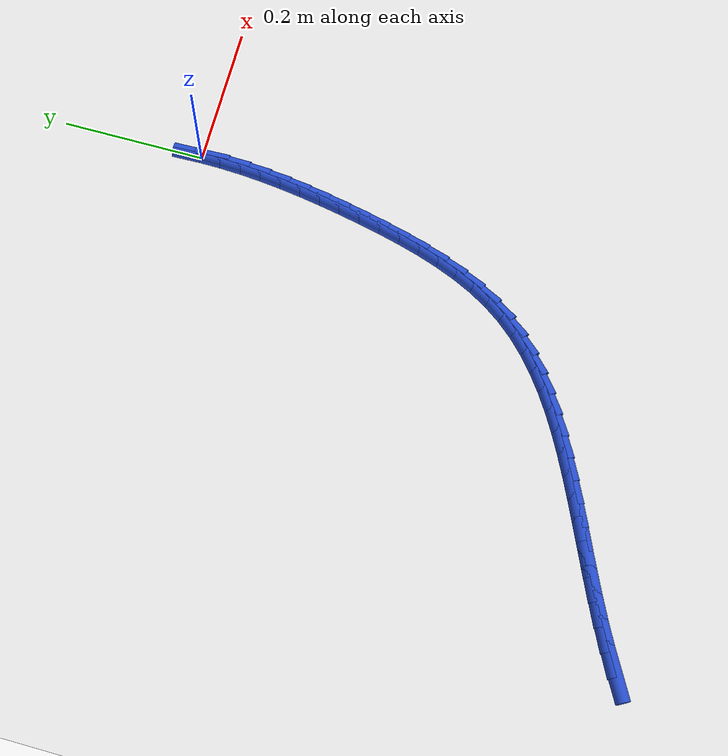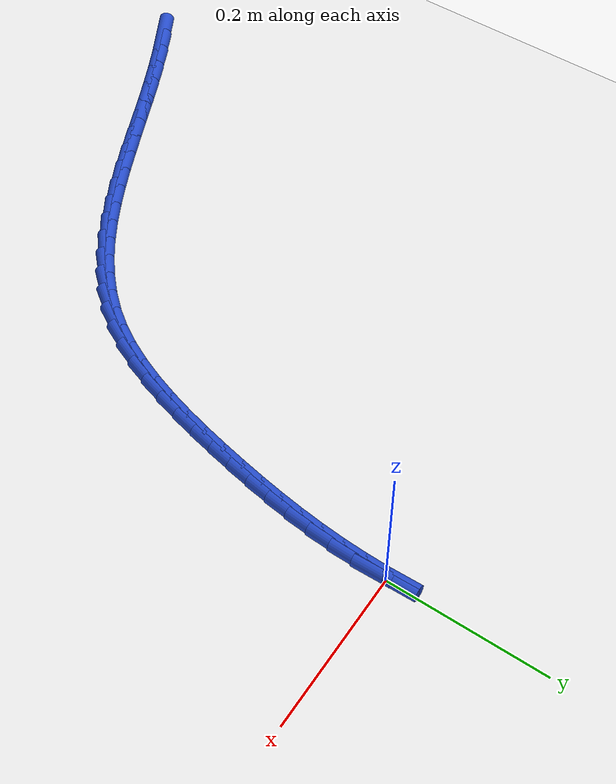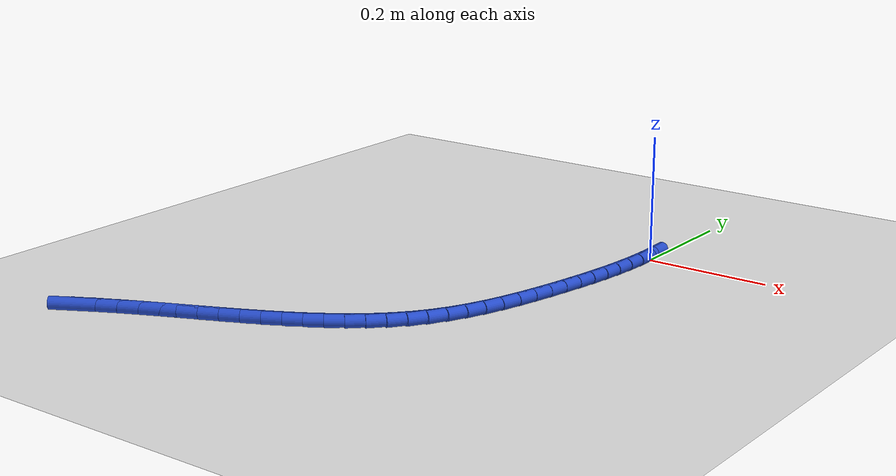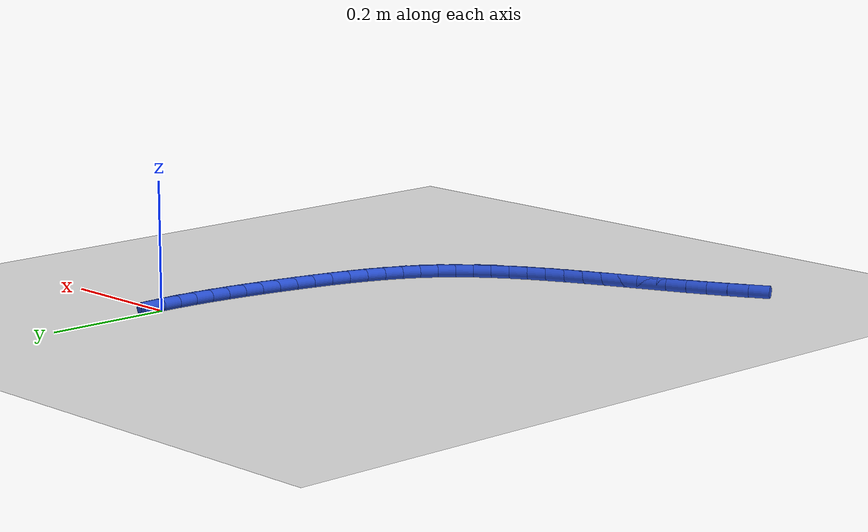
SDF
<sdf version="1.6">
 <world name="default">
  <model name="ground_plane">
   <static>1</static>
   <link name="link">
    <collision name="collision">
     <geometry><plane><normal>0 0 1</normal><size>100 100</size></plane></geometry>
     <surface><friction><ode><mu>100</mu><mu2>50</mu2></ode></friction></surface>
    </collision>
    <visual name="visual">
     <cast_shadows>0</cast_shadows>
     <geometry><plane><normal>0 0 1</normal><size>100 100</size></plane></geometry>
     <material>
      <script><uri>file://media/materials/scripts/gazebo.material</uri><name>Gazebo/WhiteGlow</name></script>
     </material>
    </visual>
   </link>
  </model>
  <model name="line">
   <link name="link_0">
    <pose>8.673617379884035e-19 -9.71445146547012e-17 0.01 0 1.57 -1.5445140956670516</pose>
    <collision name="collision">
     <geometry><cylinder><radius>0.01</radius><length>0.08</length></cylinder></geometry>
    </collision>
    <visual name="visual">
     <material>
      <script><name>Gazebo/Blue</name><uri>file://media/materials/scripts/gazebo.material</uri></script>
     </material>
     <geometry><cylinder><radius>0.01</radius><length>0.08</length></cylinder></geometry>
    </visual>
   </link>
   <link name="link_238">
    <pose>-0.5440819165499652 -0.7136613642261669 0.01 0 1.57 0.5042394348218728</pose>
    <collision name="collision">
     <geometry><cylinder><radius>0.01</radius><length>0.08</length></cylinder></geometry>
    </collision>
    <visual name="visual">
     <material>
      <script><name>Gazebo/Blue</name><uri>file://media/materials/scripts/gazebo.material</uri></script>
     </material>
     <geometry><cylinder><radius>0.01</radius><length>0.08</length></cylinder></geometry>
    </visual>
   </link>
   <link name="link_239">
    <pose>-0.5155455012771029 -0.6979144001093337 0.01 0 1.57 0.4742836826554056</pose>
    <collision name="collision">
     <geometry><cylinder><radius>0.01</radius><length>0.08</length></cylinder></geometry>
    </collision>
    <visual name="visual">
     <material>
      <script><name>Gazebo/Blue</name><uri>file://media/materials/scripts/gazebo.material</uri></script>
     </material>
     <geometry><cylinder><radius>0.01</radius><length>0.08</length></cylinder></geometry>
    </visual>
   </link>
   <link name="link_240">
    <pose>-0.486374075766426 -0.6829387622262035 0.01 0 1.57 0.4506564254894736</pose>
    <collision name="collision">
     <geometry><cylinder><radius>0.01</radius><length>0.08</length></cylinder></geometry>
    </collision>
    <visual name="visual">
     <material>
      <script><name>Gazebo/Blue</name><uri>file://media/materials/scripts/gazebo.material</uri></script>
     </material>
     <geometry><cylinder><radius>0.01</radius><length>0.08</length></cylinder></geometry>
    </visual>
   </link>
   <link name="link_241">
    <pose>-0.4568443580804427 -0.6686503677468236 0.01 0 1.57 0.4338480585856477</pose>
    <collision name="collision">
     <geometry><cylinder><radius>0.01</radius><length>0.08</length></cylinder></geometry>
    </collision>
    <visual name="visual">
     <material>
      <script><name>Gazebo/Blue</name><uri>file://media/materials/scripts/gazebo.material</uri></script>
     </material>
     <geometry><cylinder><radius>0.01</radius><length>0.08</length></cylinder></geometry>
    </visual>
   </link>
   <link name="link_242">
    <pose>-0.4271533268929415 -0.6548949074799544 0.01 0 1.57 0.42413413865004823</pose>
    <collision name="collision">
     <geometry><cylinder><radius>0.01</radius><length>0.08</length></cylinder></geometry>
    </collision>
    <visual name="visual">
     <material>
      <script><name>Gazebo/Blue</name><uri>file://media/materials/scripts/gazebo.material</uri></script>
     </material>
     <geometry><cylinder><radius>0.01</radius><length>0.08</length></cylinder></geometry>
    </visual>
   </link>
   <link name="link_243">
    <pose>-0.39746590062417736 -0.6414898368166531 0.01 0 1.57 0.42155041528539183</pose>
    <collision name="collision">
     <geometry><cylinder><radius>0.01</radius><length>0.08</length></cylinder></geometry>
    </collision>
    <visual name="visual">
     <material>
      <script><name>Gazebo/Blue</name><uri>file://media/materials/scripts/gazebo.material</uri></script>
     </material>
     <geometry><cylinder><radius>0.01</radius><length>0.08</length></cylinder></geometry>
    </visual>
   </link>
   <link name="link_244">
    <pose>-0.3679469104771372 -0.6282525343358607 0.01 0 1.57 0.42622754554371167</pose>
    <collision name="collision">
     <geometry><cylinder><radius>0.01</radius><length>0.08</length></cylinder></geometry>
    </collision>
    <visual name="visual">
     <material>
      <script><name>Gazebo/Blue</name><uri>file://media/materials/scripts/gazebo.material</uri></script>
     </material>
     <geometry><cylinder><radius>0.01</radius><length>0.08</length></cylinder></geometry>
    </visual>
   </link>
   <link name="link_245">
    <pose>-0.3387611876548121 -0.6150003786165202 0.01 0 1.57 0.43840247440151575</pose>
    <collision name="collision">
     <geometry><cylinder><radius>0.01</radius><length>0.08</length></cylinder></geometry>
    </collision>
    <visual name="visual">
     <material>
      <script><name>Gazebo/Blue</name><uri>file://media/materials/scripts/gazebo.material</uri></script>
     </material>
     <geometry><cylinder><radius>0.01</radius><length>0.08</length></cylinder></geometry>
    </visual>
   </link>
   <link name="link_246">
    <pose>-0.3100735633601905 -0.6015507482375734 0.01 0 1.57 0.4584208926110611</pose>
    <collision name="collision">
     <geometry><cylinder><radius>0.01</radius><length>0.08</length></cylinder></geometry>
    </collision>
    <visual name="visual">
     <material>
      <script><name>Gazebo/Blue</name><uri>file://media/materials/scripts/gazebo.material</uri></script>
     </material>
     <geometry><cylinder><radius>0.01</radius><length>0.08</length></cylinder></geometry>
    </visual>
   </link>
   <link name="link_247">
    <pose>-0.28204886879626095 -0.5877210217779621 0.01 0 1.57 0.48672883350217594</pose>
    <collision name="collision">
     <geometry><cylinder><radius>0.01</radius><length>0.08</length></cylinder></geometry>
    </collision>
    <visual name="visual">
     <material>
      <script><name>Gazebo/Blue</name><uri>file://media/materials/scripts/gazebo.material</uri></script>
     </material>
     <geometry><cylinder><radius>0.01</radius><length>0.08</length></cylinder></geometry>
    </visual>
   </link>
   <link name="link_248">
    <pose>-0.25485193516601423 -0.5733285778166293 0.01 0 1.57 0.5238477234206257</pose>
    <collision name="collision">
     <geometry><cylinder><radius>0.01</radius><length>0.08</length></cylinder></geometry>
    </collision>
    <visual name="visual">
     <material>
      <script><name>Gazebo/Blue</name><uri>file://media/materials/scripts/gazebo.material</uri></script>
     </material>
     <geometry><cylinder><radius>0.01</radius><length>0.08</length></cylinder></geometry>
    </visual>
   </link>
   <link name="link_249">
    <pose>-0.2286475936724381 -0.558190794932516 0.01 0 1.57 0.570324134051942</pose>
    <collision name="collision">
     <geometry><cylinder><radius>0.01</radius><length>0.08</length></cylinder></geometry>
    </collision>
    <visual name="visual">
     <material>
      <script><name>Gazebo/Blue</name><uri>file://media/materials/scripts/gazebo.material</uri></script>
     </material>
     <geometry><cylinder><radius>0.01</radius><length>0.08</length></cylinder></geometry>
    </visual>
   </link>
   <link name="link_250">
    <pose>-0.20360067551852326 -0.5421250517045654 0.01 0 1.57 0.626643245215111</pose>
    <collision name="collision">
     <geometry><cylinder><radius>0.01</radius><length>0.08</length></cylinder></geometry>
    </collision>
    <visual name="visual">
     <material>
      <script><name>Gazebo/Blue</name><uri>file://media/materials/scripts/gazebo.material</uri></script>
     </material>
     <geometry><cylinder><radius>0.01</radius><length>0.08</length></cylinder></geometry>
    </visual>
   </link>
   <link name="link_251">
    <pose>-0.1798760119072577 -0.5249487267117188 0.01 0 1.57 0.6930962740765452</pose>
    <collision name="collision">
     <geometry><cylinder><radius>0.01</radius><length>0.08</length></cylinder></geometry>
    </collision>
    <visual name="visual">
     <material>
      <script><name>Gazebo/Blue</name><uri>file://media/materials/scripts/gazebo.material</uri></script>
     </material>
     <geometry><cylinder><radius>0.01</radius><length>0.08</length></cylinder></geometry>
    </visual>
   </link>
   <link name="link_252">
    <pose>-0.15763843404163186 -0.5064791985329189 0.01 0 1.57 0.7696014977796686</pose>
    <collision name="collision">
     <geometry><cylinder><radius>0.01</radius><length>0.08</length></cylinder></geometry>
    </collision>
    <visual name="visual">
     <material>
      <script><name>Gazebo/Blue</name><uri>file://media/materials/scripts/gazebo.material</uri></script>
     </material>
     <geometry><cylinder><radius>0.01</radius><length>0.08</length></cylinder></geometry>
    </visual>
   </link>
   <link name="link_253">
    <pose>-0.1370527731246338 -0.4865338457471071 0.01 0 1.57 0.855500975180025</pose>
    <collision name="collision">
     <geometry><cylinder><radius>0.01</radius><length>0.08</length></cylinder></geometry>
    </collision>
    <visual name="visual">
     <material>
      <script><name>Gazebo/Blue</name><uri>file://media/materials/scripts/gazebo.material</uri></script>
     </material>
     <geometry><cylinder><radius>0.01</radius><length>0.08</length></cylinder></geometry>
    </visual>
   </link>
   <link name="link_254">
    <pose>-0.11828386035925398 -0.4649300469332268 0.01 0 1.57 0.949296777092911</pose>
    <collision name="collision">
     <geometry><cylinder><radius>0.01</radius><length>0.08</length></cylinder></geometry>
    </collision>
    <visual name="visual">
     <material>
      <script><name>Gazebo/Blue</name><uri>file://media/materials/scripts/gazebo.material</uri></script>
     </material>
     <geometry><cylinder><radius>0.01</radius><length>0.08</length></cylinder></geometry>
    </visual>
   </link>
   <link name="link_255">
    <pose>-0.1014948021937686 -0.4414873796852712 0.01 0 1.57 1.0421304355389036</pose>
    <collision name="collision">
     <geometry><cylinder><radius>0.01</radius><length>0.08</length></cylinder></geometry>
    </collision>
    <visual name="visual">
     <material>
      <script><name>Gazebo/Blue</name><uri>file://media/materials/scripts/gazebo.material</uri></script>
     </material>
     <geometry><cylinder><radius>0.01</radius><length>0.08</length></cylinder></geometry>
    </visual>
   </link>
   <link name="link_256">
    <pose>-0.08671865606407447 -0.41619123052868773 0.01 0 1.57 1.1219582338415532</pose>
    <collision name="collision">
     <geometry><cylinder><radius>0.01</radius><length>0.08</length></cylinder></geometry>
    </collision>
    <visual name="visual">
     <material>
      <script><name>Gazebo/Blue</name><uri>file://media/materials/scripts/gazebo.material</uri></script>
     </material>
     <geometry><cylinder><radius>0.01</radius><length>0.08</length></cylinder></geometry>
    </visual>
   </link>
   <link name="link_257">
    <pose>-0.07376993435392837 -0.38930562494899923 0.01 0 1.57 1.188639997748692</pose>
    <collision name="collision">
     <geometry><cylinder><radius>0.01</radius><length>0.08</length></cylinder></geometry>
    </collision>
    <visual name="visual">
     <material>
      <script><name>Gazebo/Blue</name><uri>file://media/materials/scripts/gazebo.material</uri></script>
     </material>
     <geometry><cylinder><radius>0.01</radius><length>0.08</length></cylinder></geometry>
    </visual>
   </link>
   <link name="link_258">
    <pose>-0.06244221641868284 -0.36112127747002365 0.01 0 1.57 1.2434347111171584</pose>
    <collision name="collision">
     <geometry><cylinder><radius>0.01</radius><length>0.08</length></cylinder></geometry>
    </collision>
    <visual name="visual">
     <material>
      <script><name>Gazebo/Blue</name><uri>file://media/materials/scripts/gazebo.material</uri></script>
     </material>
     <geometry><cylinder><radius>0.01</radius><length>0.08</length></cylinder></geometry>
    </visual>
   </link>
   <link name="link_259">
    <pose>-0.05252908161369152 -0.3319289026155818 0.01 0 1.57 1.2875780997806263</pose>
    <collision name="collision">
     <geometry><cylinder><radius>0.01</radius><length>0.08</length></cylinder></geometry>
    </collision>
    <visual name="visual">
     <material>
      <script><name>Gazebo/Blue</name><uri>file://media/materials/scripts/gazebo.material</uri></script>
     </material>
     <geometry><cylinder><radius>0.01</radius><length>0.08</length></cylinder></geometry>
    </visual>
   </link>
   <link name="link_260">
    <pose>-0.04382410929430676 -0.30201921490949096 0.01 0 1.57 1.322124213720686</pose>
    <collision name="collision">
     <geometry><cylinder><radius>0.01</radius><length>0.08</length></cylinder></geometry>
    </collision>
    <visual name="visual">
     <material>
      <script><name>Gazebo/Blue</name><uri>file://media/materials/scripts/gazebo.material</uri></script>
     </material>
     <geometry><cylinder><radius>0.01</radius><length>0.08</length></cylinder></geometry>
    </visual>
   </link>
   <link name="link_261">
    <pose>-0.03612087881588202 -0.2716829288755719 0.01 0 1.57 1.3478684984905005</pose>
    <collision name="collision">
     <geometry><cylinder><radius>0.01</radius><length>0.08</length></cylinder></geometry>
    </collision>
    <visual name="visual">
     <material>
      <script><name>Gazebo/Blue</name><uri>file://media/materials/scripts/gazebo.material</uri></script>
     </material>
     <geometry><cylinder><radius>0.01</radius><length>0.08</length></cylinder></geometry>
    </visual>
   </link>
   <link name="link_262">
    <pose>-0.02921296953376975 -0.24121075903764178 0.01 0 1.57 1.365853921820145</pose>
    <collision name="collision">
     <geometry><cylinder><radius>0.01</radius><length>0.08</length></cylinder></geometry>
    </collision>
    <visual name="visual">
     <material>
      <script><name>Gazebo/Blue</name><uri>file://media/materials/scripts/gazebo.material</uri></script>
     </material>
     <geometry><cylinder><radius>0.01</radius><length>0.08</length></cylinder></geometry>
    </visual>
   </link>
   <link name="link_263">
    <pose>-0.022907664357807674 -0.21087648142973617 0.01 0 1.57 1.3829623203407435</pose>
    <collision name="collision">
     <geometry><cylinder><radius>0.01</radius><length>0.08</length></cylinder></geometry>
    </collision>
    <visual name="visual">
     <material>
      <script><name>Gazebo/Blue</name><uri>file://media/materials/scripts/gazebo.material</uri></script>
     </material>
     <geometry><cylinder><radius>0.01</radius><length>0.08</length></cylinder></geometry>
    </visual>
   </link>
   <link name="link_264">
    <pose>-0.01718058433491205 -0.18074579513631694 0.01 0 1.57 1.4037027665382704</pose>
    <collision name="collision">
     <geometry><cylinder><radius>0.01</radius><length>0.08</length></cylinder></geometry>
    </collision>
    <visual name="visual">
     <material>
      <script><name>Gazebo/Blue</name><uri>file://media/materials/scripts/gazebo.material</uri></script>
     </material>
     <geometry><cylinder><radius>0.01</radius><length>0.08</length></cylinder></geometry>
    </visual>
   </link>
   <link name="link_265">
    <pose>-0.012120405450259735 -0.15074465594246989 0.01 0 1.57 1.4281078151448001</pose>
    <collision name="collision">
     <geometry><cylinder><radius>0.01</radius><length>0.08</length></cylinder></geometry>
    </collision>
    <visual name="visual">
     <material>
      <script><name>Gazebo/Blue</name><uri>file://media/materials/scripts/gazebo.material</uri></script>
     </material>
     <geometry><cylinder><radius>0.01</radius><length>0.08</length></cylinder></geometry>
    </visual>
   </link>
   <link name="link_266">
    <pose>-0.007817898329546281 -0.12079643052057014 0.01 0 1.57 1.4560592190394948</pose>
    <collision name="collision">
     <geometry><cylinder><radius>0.01</radius><length>0.08</length></cylinder></geometry>
    </collision>
    <visual name="visual">
     <material>
      <script><name>Gazebo/Blue</name><uri>file://media/materials/scripts/gazebo.material</uri></script>
     </material>
     <geometry><cylinder><radius>0.01</radius><length>0.08</length></cylinder></geometry>
    </visual>
   </link>
   <link name="link_267">
    <pose>-0.0043638335984678076 -0.09082448554299681 0.01 0 1.57 1.4873636038559523</pose>
    <collision name="collision">
     <geometry><cylinder><radius>0.01</radius><length>0.08</length></cylinder></geometry>
    </collision>
    <visual name="visual">
     <material>
      <script><name>Gazebo/Blue</name><uri>file://media/materials/scripts/gazebo.material</uri></script>
     </material>
     <geometry><cylinder><radius>0.01</radius><length>0.08</length></cylinder></geometry>
    </visual>
   </link>
   <link name="link_268">
    <pose>-0.0018489818827200281 -0.060752187682126015 0.01 0 1.57 1.5217479875059403</pose>
    <collision name="collision">
     <geometry><cylinder><radius>0.01</radius><length>0.08</length></cylinder></geometry>
    </collision>
    <visual name="visual">
     <material>
      <script><name>Gazebo/Blue</name><uri>file://media/materials/scripts/gazebo.material</uri></script>
     </material>
     <geometry><cylinder><radius>0.01</radius><length>0.08</length></cylinder></geometry>
    </visual>
   </link>
   <link name="link_269">
    <pose>-0.00036411380799877607 -0.030502903610334142 0.01 0 1.57 1.558859872494159</pose>
    <collision name="collision">
     <geometry><cylinder><radius>0.01</radius><length>0.08</length></cylinder></geometry>
    </collision>
    <visual name="visual">
     <material>
      <script><name>Gazebo/Blue</name><uri>file://media/materials/scripts/gazebo.material</uri></script>
     </material>
     <geometry><cylinder><radius>0.01</radius><length>0.08</length></cylinder></geometry>
    </visual>
   </link>
   <link name="link_270">
    <pose>-3.469446951953614e-18 -1.0408340855860843e-16 0.01 0 1.57 -1.5433194832960864</pose>
    <collision name="collision">
     <geometry><cylinder><radius>0.01</radius><length>0.08</length></cylinder></geometry>
    </collision>
    <visual name="visual">
     <material>
      <script><name>Gazebo/Blue</name><uri>file://media/materials/scripts/gazebo.material</uri></script>
     </material>
     <geometry><cylinder><radius>0.01</radius><length>0.08</length></cylinder></geometry>
    </visual>
   </link>
  </model>
 </world>
</sdf>
